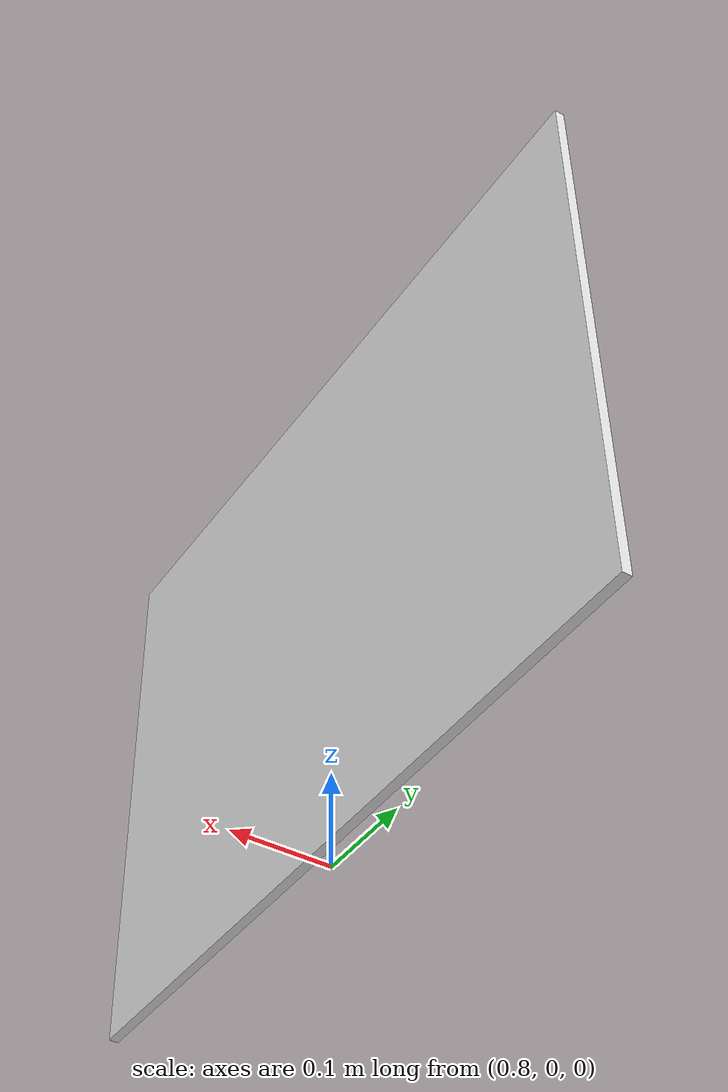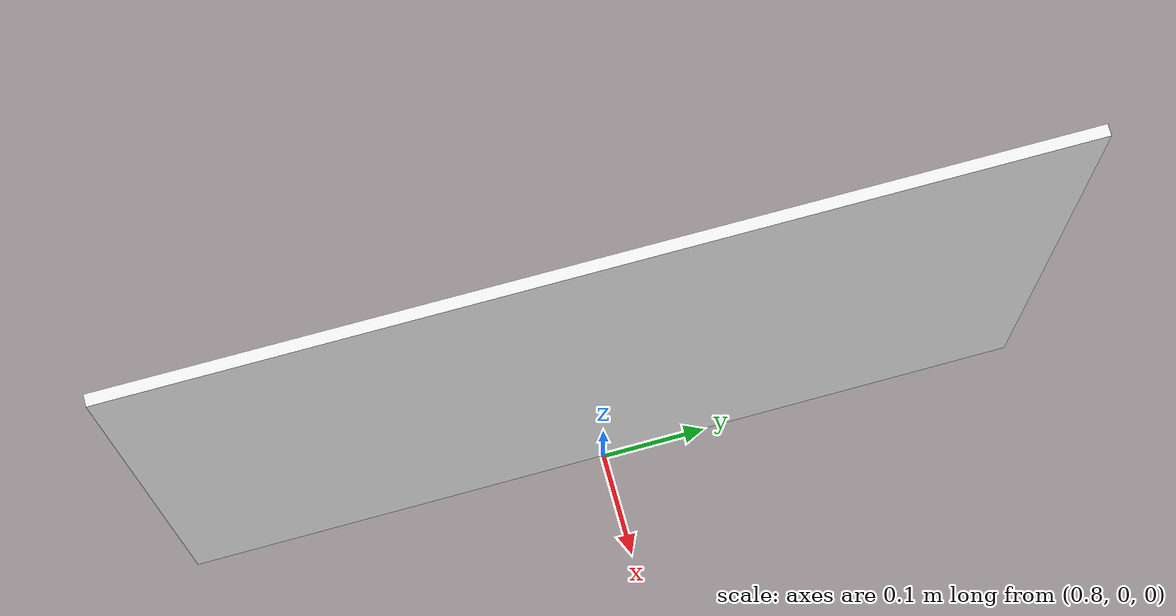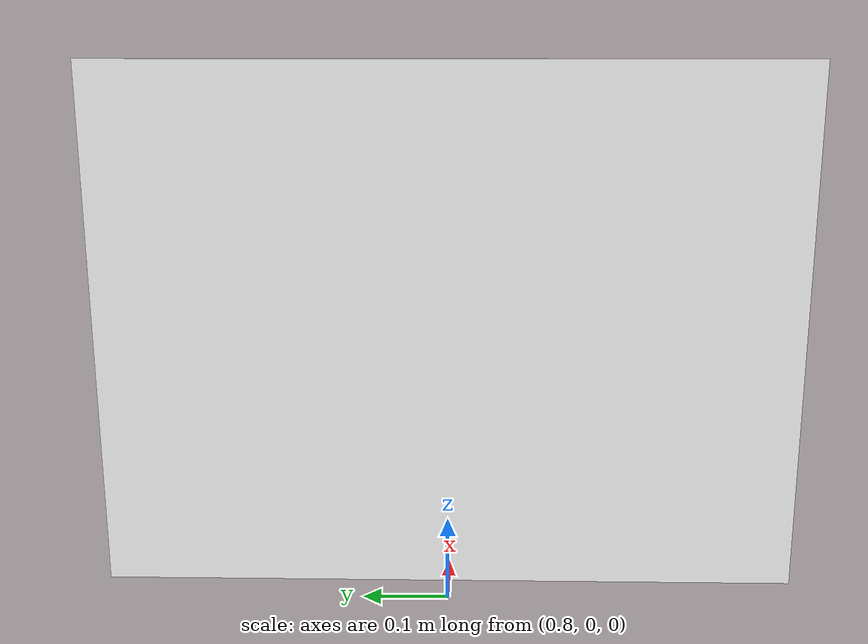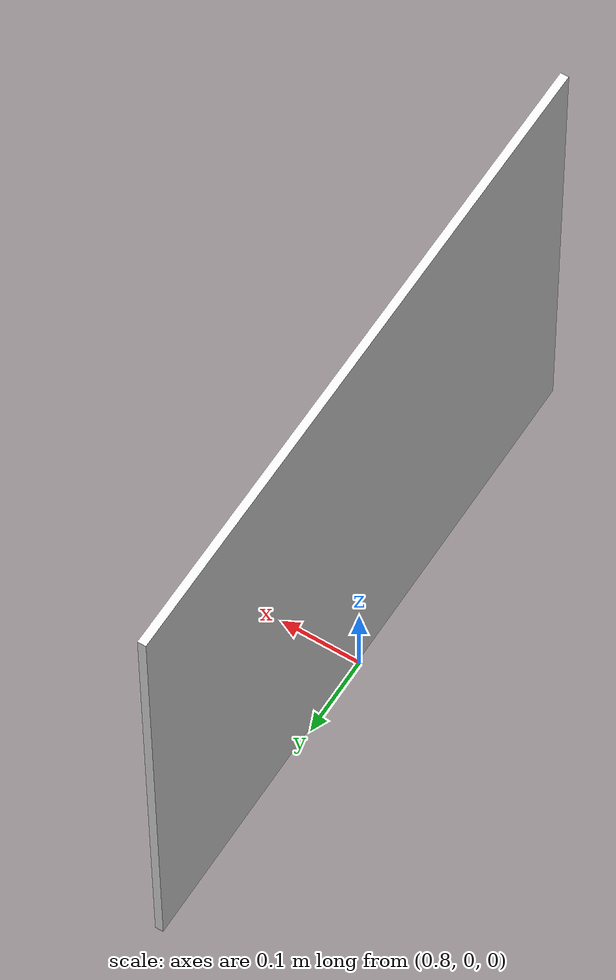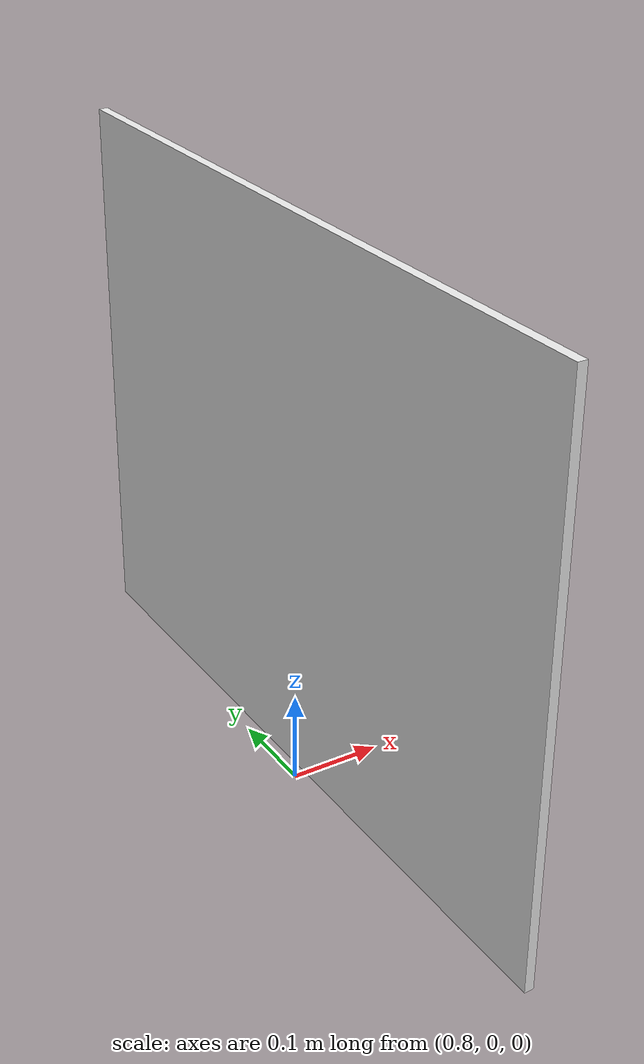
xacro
<?xml version="1.0"?>
<!-- Revolute-Revolute Manipulator -->
<robot name="screen" xmlns:xacro="http://www.ros.org/wiki/xacro">

  <!-- Import all Gazebo-customization elements, including Gazebo colors -->
  <xacro:include filename="$(find ros2cv)/description/screen.gazebo" />

  <!-- Used for fixing robot to Gazebo 'base_link' -->
  <link name="world">
  </link>

  <joint name="fixed" type="fixed">
    <parent link="world"/>
    <child link="display_screen_link"/>
    <origin xyz="0.8 0 0.325" rpy="1.5708 0 -1.5708"/>
    <axis xyz="0 0 0"/>
  </joint>

  <!-- Screen -->
  <link name="display_screen_link">
    <collision>
      <origin xyz="0 0 0" rpy="0 0 0"/>
      <geometry>
	<box size="0.8 0.6 0.001"/>
      </geometry>
    </collision>
    <gravity>0</gravity>

    <visual>
      <origin xyz="0 0 0" rpy="0 0 0"/>
      <geometry>
	<box size="0.8 0.6 0.01"/>
      </geometry>
      <material name="Gazebo/White"/>
    </visual>

    <material>
      <ambient>"1 1 1 1"</ambient>
      <diffuse>"1 1 1 1"</diffuse>
      <specular>"1 1 1 1"</specular>
      <emissive>"1 1 1 1"</emissive>
    </material>

    <inertial>
      <origin xyz="0 0 0" rpy="0 0 0"/>
      <mass value="100"/>
      <inertia
	  ixx="1" ixy="0.0" ixz="0.0"
	  iyy="1" iyz="0.0"
	  izz="1"/>
    </inertial>
  </link>

</robot>
